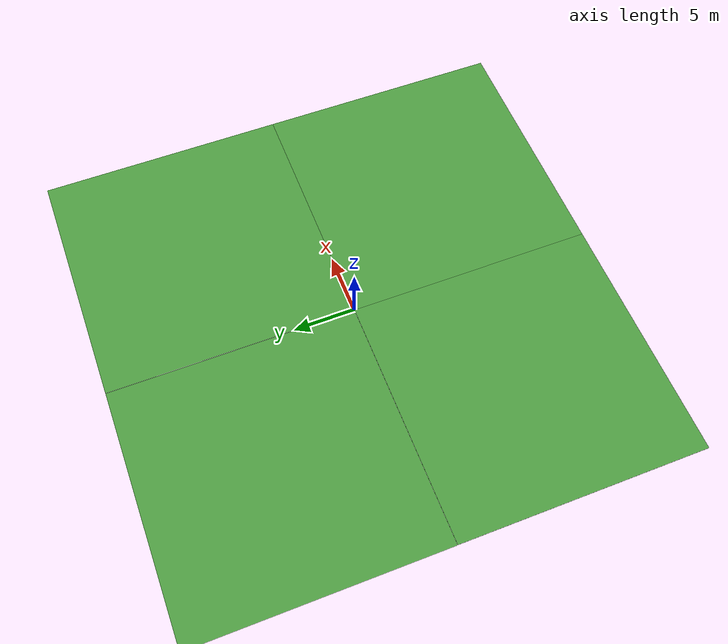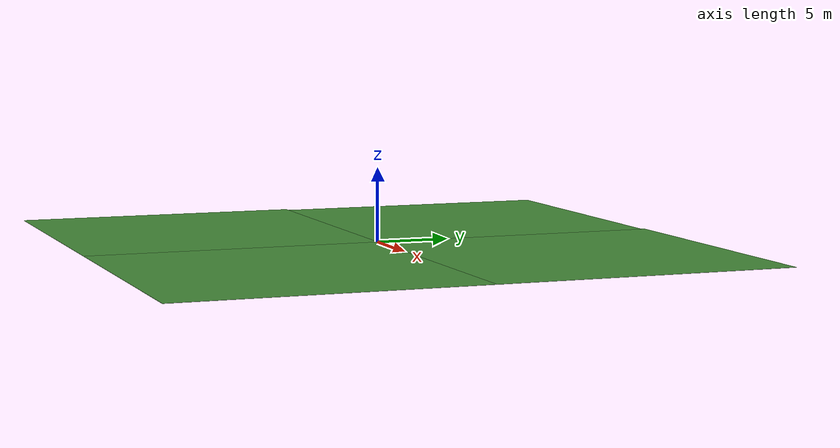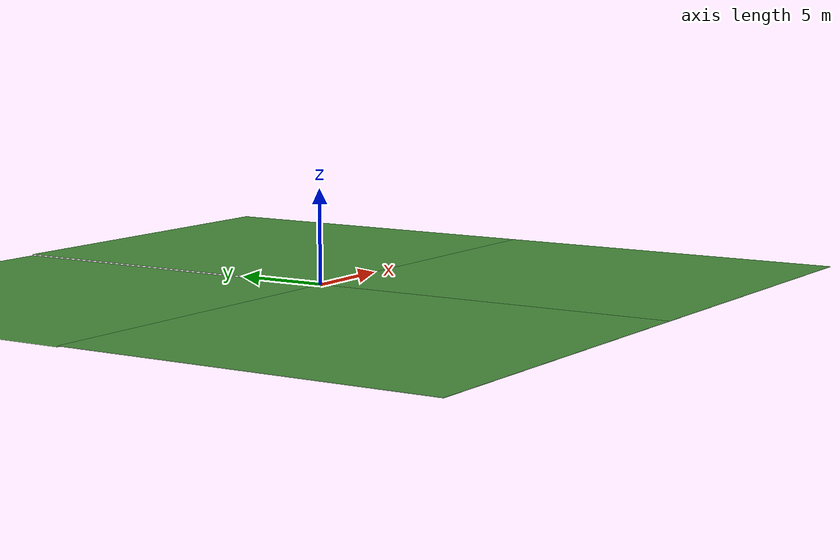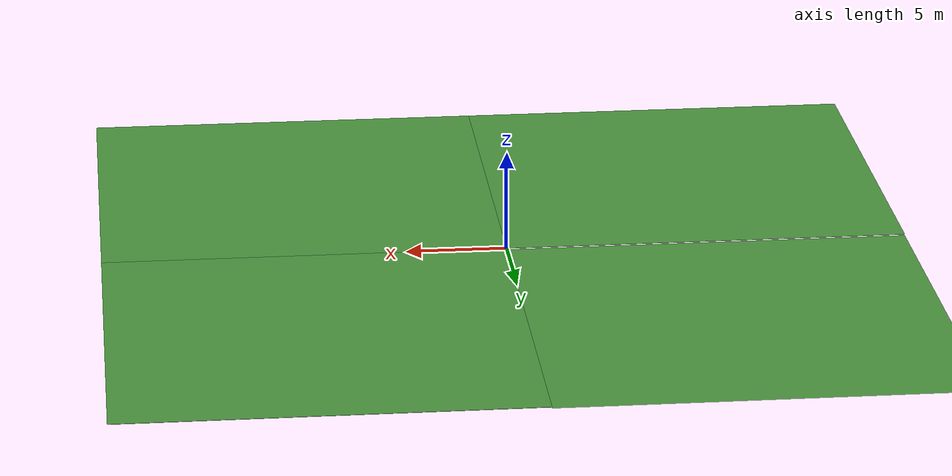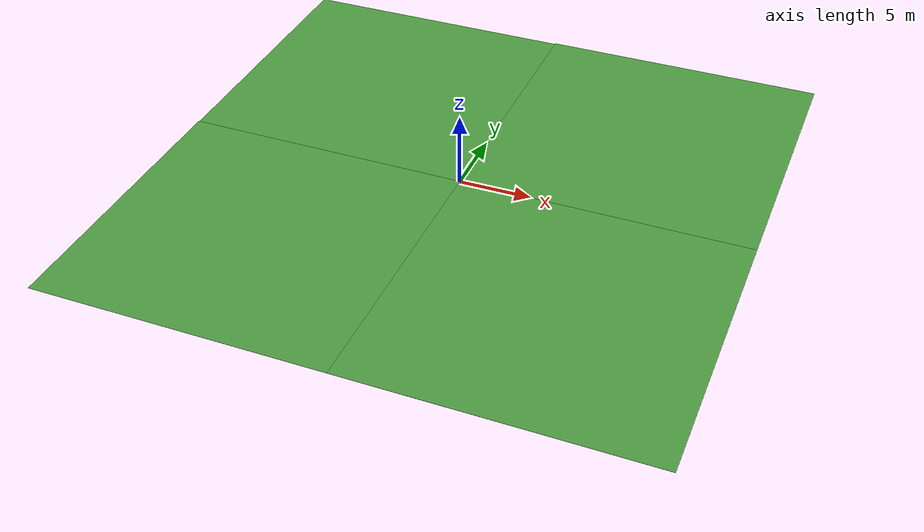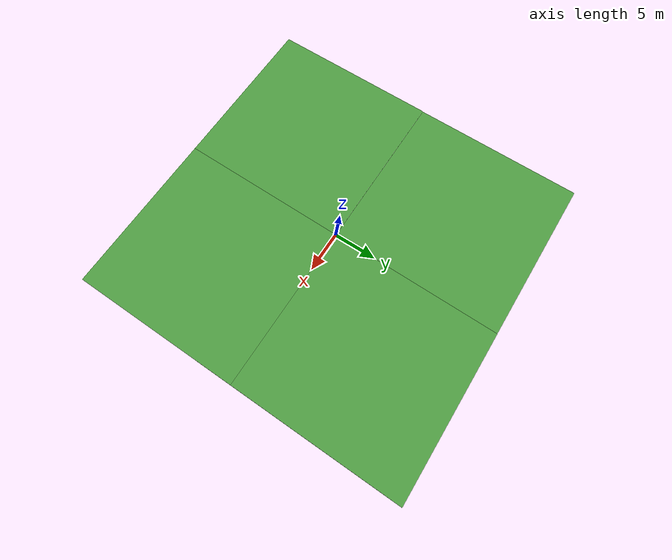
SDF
<?xml version='1.0'?>
<sdf version='1.4'>
  <model name='grass_plane'>
    <static>true</static>
    <link name='link'>
      <collision name='collision'>
        <geometry>
          <plane>
            <normal>0 0 1</normal>
            <size>40 40</size>
          </plane>
        </geometry>
        <surface>
          <friction>
            <ode>
              <mu>0.5</mu>
              <mu2>.5</mu2>
            </ode>
          </friction>
        </surface>
      </collision>

      <visual name='visual_0'>
        <pose>-10 10 0 0 0 0</pose>

        <cast_shadows>true</cast_shadows>
        <geometry>
          <plane>
            <normal>0 0 1</normal>
            <size>20 20</size>
          </plane>
        </geometry>
        <material>
          <script>
            <uri>model://grass_plane/materials/scripts</uri>
            <uri>model://grass_plane/materials/textures</uri>
            <name>vrc/grass</name>
          </script>
        </material>
      </visual>

      <visual name='visual_1'>
        <pose>-10 -10 0 0 0 0</pose>

        <cast_shadows>true</cast_shadows>
        <geometry>
          <plane>
            <normal>0 0 1</normal>
            <size>20 20</size>
          </plane>
        </geometry>
        <material>
          <script>
            <uri>model://grass_plane/materials/scripts</uri>
            <uri>model://grass_plane/materials/textures</uri>
            <name>vrc/grass</name>
          </script>
        </material>
      </visual>

      <visual name='visual_2'>
        <pose>10 -10 0 0 0 0</pose>

        <cast_shadows>true</cast_shadows>
        <geometry>
          <plane>
            <normal>0 0 1</normal>
            <size>20 20</size>
          </plane>
        </geometry>
        <material>
          <script>
            <uri>model://grass_plane/materials/scripts</uri>
            <uri>model://grass_plane/materials/textures</uri>
            <name>vrc/grass</name>
          </script>
        </material>
      </visual>

      <visual name='visual_3'>
        <pose>10 10 0 0 0 0</pose>

        <cast_shadows>true</cast_shadows>
        <geometry>
          <plane>
            <normal>0 0 1</normal>
            <size>20 20</size>
          </plane>
        </geometry>
        <material>
          <script>
            <uri>model://grass_plane/materials/scripts</uri>
            <uri>model://grass_plane/materials/textures</uri>
            <name>vrc/grass</name>
          </script>
        </material>
      </visual>

    </link>
  </model>
</sdf>
